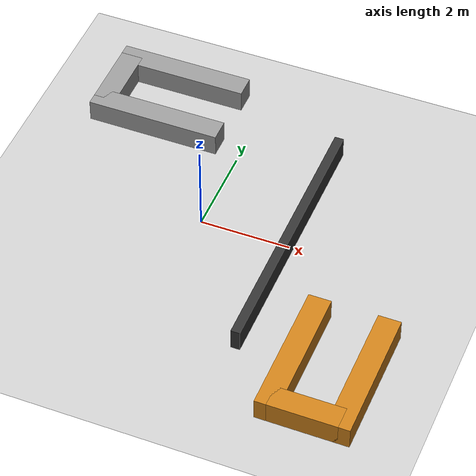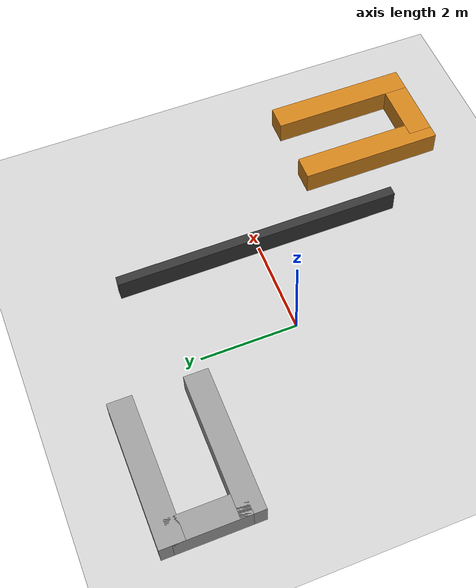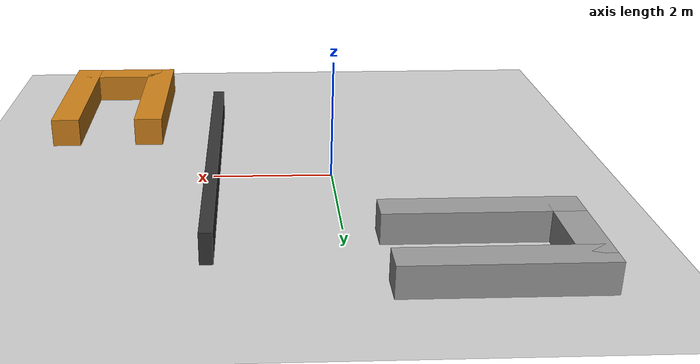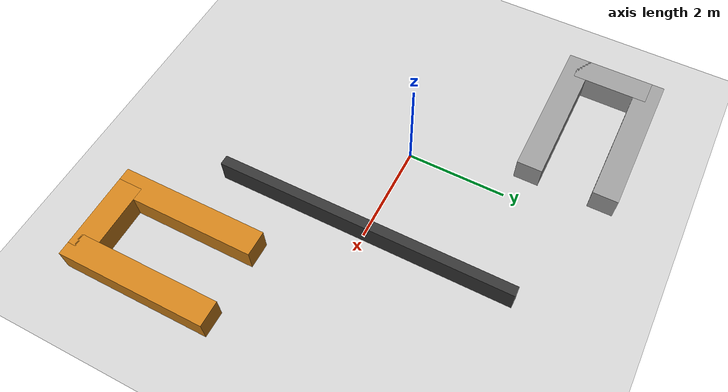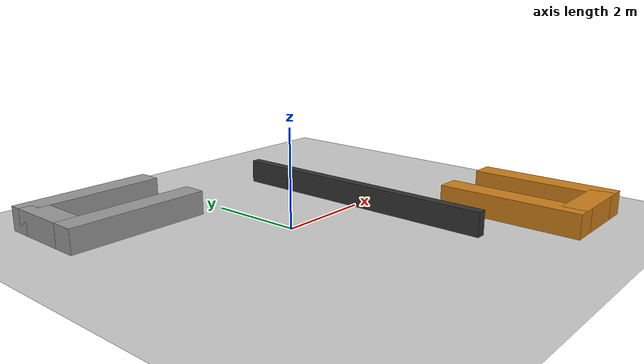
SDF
<?xml version="1.0" ?>
<sdf version="1.7">
  <world name="simple_bug_world">

<light type="directional" name="sun">
    <cast_shadows>true</cast_shadows>
    <pose>0 0 10 0 -0 0</pose>
    <diffuse>0.8 0.8 0.8 1</diffuse>
    <specular>0.2 0.2 0.2 1</specular>
    <attenuation>
        <range>1000</range>
        <constant>0.9</constant>
        <linear>0.01</linear>
        <quadratic>0.001</quadratic>
    </attenuation>
    <direction>0 0 -1</direction>
</light>

    <model name="ground_plane">
      <link name="ground_plane_link">
        <collision name="ground_plane_collision">
          <geometry>
            <plane>
              <normal>0 0 1</normal>
              <size>100 100</size>
            </plane>
          </geometry>
        </collision>
        <visual name="ground_plane_visual">
          <geometry>
            <plane>
              <normal>0 0 1</normal>
              <size>100 100</size>
            </plane>
          </geometry>
          <material>
            <ambient>0.8 0.8 0.8 1</ambient>
            <diffuse>0.8 0.8 0.8 1</diffuse>
            <specular>0.8 0.8 0.8 1</specular>
          </material>
        </visual>
      </link>
      <static>true</static>
    </model>

    <model name="wall_1">
      <link name="wall_link_1">
        <collision name="wall_collision_1">
          <geometry>
            <box>
              <size>0.2 6 0.5</size>
            </box>
          </geometry>
        </collision>
        <visual name="wall_visual_1">
          <geometry>
            <box>
              <size>0.2 6 0.5</size>
            </box>
          </geometry>
          <material>
            <ambient>0.2 0.2 0.2 1</ambient>
            <diffuse>0.2 0.2 0.2 1</diffuse>
            <specular>0.2 0.2 0.2 1</specular>
          </material>
        </visual>
      </link>
      <pose>2 0 0.25 0 0 0</pose>
      <static>true</static>
    </model>

    <model name="concave_U_obstacle">
      <link name="concave_U_link">
        <visual name="u_side_1_visual">
          <pose>-0.75 0 0.25 0 0 0</pose>
          <geometry><box><size>0.5 3 0.5</size></box></geometry>
          <material><ambient>0.8 0.5 0.1 1</ambient><diffuse>0.8 0.5 0.1 1</diffuse></material>
        </visual>
        <visual name="u_side_2_visual">
          <pose>0.75 0 0.25 0 0 0</pose>
          <geometry><box><size>0.5 3 0.5</size></box></geometry>
          <material><ambient>0.8 0.5 0.1 1</ambient><diffuse>0.8 0.5 0.1 1</diffuse></material>
        </visual>
        <visual name="u_base_visual">
          <pose>0 -1.25 0.25 0 0 0</pose>
          <geometry><box><size>1.5 0.5 0.5</size></box></geometry>
          <material><ambient>0.8 0.5 0.1 1</ambient><diffuse>0.8 0.5 0.1 1</diffuse></material>
        </visual>

        <collision name="u_side_1_collision">
          <pose>-0.75 0 0.25 0 0 0</pose>
          <geometry><box><size>0.5 3 0.5</size></box></geometry>
        </collision>
        <collision name="u_side_2_collision">
          <pose>0.75 0 0.25 0 0 0</pose>
          <geometry><box><size>0.5 3 0.5</size></box></geometry>
        </collision>
        <collision name="u_base_collision">
          <pose>0 -1.25 0.25 0 0 0</pose>
          <geometry><box><size>1.5 0.5 0.5</size></box></geometry>
        </collision>
      </link>
      <static>true</static>
      <pose>4 -3 0 0 0 0</pose>
    </model>

    <model name="concave_C_obstacle">
      <link name="concave_C_link">
        <visual name="c_side_1_visual">
          <pose>0 0.75 0.25 0 0 0</pose>
          <geometry><box><size>3 0.5 0.5</size></box></geometry>
          <material><ambient>0.6 0.6 0.6 1</ambient><diffuse>0.6 0.6 0.6 1</diffuse></material>
        </visual>
        <visual name="c_side_2_visual">
          <pose>0 -0.75 0.25 0 0 0</pose>
          <geometry><box><size>3 0.5 0.5</size></box></geometry>
          <material><ambient>0.6 0.6 0.6 1</ambient><diffuse>0.6 0.6 0.6 1</diffuse></material>
        </visual>
        <visual name="c_end_visual">
          <pose>-1.25 0 0.25 0 0 0</pose>
          <geometry><box><size>0.5 1.5 0.5</size></box></geometry>
          <material><ambient>0.6 0.6 0.6 1</ambient><diffuse>0.6 0.6 0.6 1</diffuse></material>
        </visual>

        <collision name="c_side_1_collision">
          <pose>0 0.75 0.25 0 0 0</pose>
          <geometry><box><size>3 0.5 0.5</size></box></geometry>
        </collision>
        <collision name="c_side_2_collision">
          <pose>0 -0.75 0.25 0 0 0</pose>
          <geometry><box><size>3 0.5 0.5</size></box></geometry>
        </collision>
        <collision name="c_end_collision">
          <pose>-1.25 0 0.25 0 0 0</pose>
          <geometry><box><size>0.5 1.5 0.5</size></box></geometry>
        </collision>
      </link>
      <static>true</static>
      <pose>-2 3 0 0 0 0</pose>
    </model>
  </world>
</sdf>
